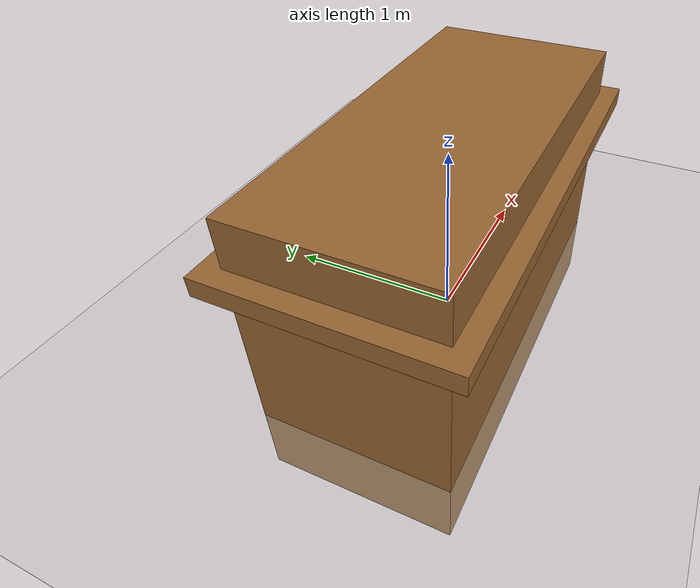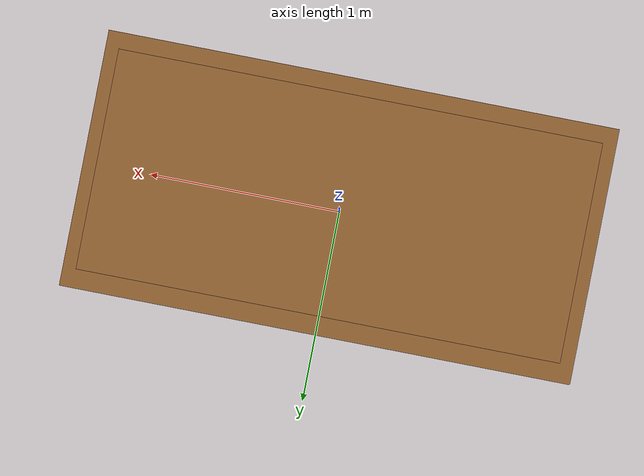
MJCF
<?xml version="1.0" encoding="utf-8"?>
<!-- MuJoCo收银台仿真模型 | 可直接加载运行 -->
<mujoco model="supermarket_checkout_counter">
  <!-- 编译配置：从几何形状自动计算惯性 -->
  <compiler angle="radian" inertiafromgeom="true" autolimits="true"/>

  <!-- 物理参数：步长0.005秒，重力9.81m/s² -->
  <option timestep="0.005" gravity="0 0 -9.81" iterations="50"/>
  <size nconmax="500" njmax="200" nstack="1000000"/>

  <!-- 材质与纹理定义 -->
  <asset>
    <!-- 木质纹理（收银台主体） -->
    <texture name="wood_tex" type="2d" builtin="checker"
             rgb1=".6 .4 .2" rgb2=".5 .3 .1" width="200" height="200"/>
    <!-- 金属纹理（扫码枪、收银机） -->
    <texture name="metal_tex" type="2d" builtin="flat"
             rgb1=".8 .8 .8" rgb2=".7 .7 .7" width="200" height="200"/>
    <!-- 塑料纹理（显示屏） -->
    <texture name="plastic_tex" type="2d" builtin="flat"
             rgb1=".1 .1 .3" rgb2=".1 .1 .4" width="200" height="200"/>

    <!-- 材质绑定 -->
    <material name="wood_mat" texture="wood_tex" texrepeat="5 5" specular=".1" shininess=".1"/>
    <material name="metal_mat" texture="metal_tex" texrepeat="2 2" specular=".9" shininess=".9"/>
    <material name="plastic_mat" texture="plastic_tex" texrepeat="1 1" specular=".5" shininess=".5"/>
  </asset>

  <!-- 物理场景主体 -->
  <worldbody>
    <!-- 地面：无限平面，灰色 -->
    <geom name="floor" type="plane" size="10 10 0.1" pos="0 0 0" rgba=".8 .8 .8 1"/>

    <!-- 收银台主体（高度0.8m，符合真实收银台尺寸） -->
    <body name="checkout_base" pos="0 0 0.8">
      <!-- 收银台台面：长1.2m，宽0.6m，厚0.05m -->
      <geom name="counter_top" type="box" size="1.2 0.6 0.05" pos="0 0 0.1"
            material="wood_mat" rgba=".6 .4 .2 1" friction=".8 .1 .01"/>
      <!-- 收银台柜体：长1.1m，宽0.5m，高0.8m -->
      <geom name="counter_body" type="box" size="1.1 0.5 0.8" pos="0 0 -0.4"
            material="wood_mat" rgba=".6 .4 .2 1"/>

      <!-- 收银机（右侧） -->
      <body name="cash_register" pos="0.5 0.2 0.15">
        <!-- 显示屏 -->
        <geom name="register_display" type="box" size="0.2 0.15 0.02" pos="0 0 0.1"
              material="plastic_mat" rgba=".1 .1 .3 1"/>
        <!-- 键盘 -->
        <geom name="register_keyboard" type="box" size="0.15 0.1 0.01" pos="0 0 0.05"
              material="metal_mat" rgba=".2 .2 .2 1"/>
        <!-- 收银机主机 -->
        <geom name="register_main" type="box" size="0.2 0.18 0.1" pos="0 0 -0.05"
              material="metal_mat" rgba=".3 .3 .3 1"/>
      </body>

      <!-- 扫码枪（左侧，带旋转关节） -->
      <body name="scanner_base" pos="-0.3 0.2 0.12">
        <!-- 旋转关节：绕X轴旋转，范围-1.0~0.5弧度（-57°~28°） -->
        <joint name="scanner_joint" type="hinge" axis="1 0 0" range="-1.0 0.5"
               damping="0.1" armature="0.01"/>
        <!-- 扫码枪支架 -->
        <geom name="scanner_arm" type="cylinder" size="0.01 0.15" pos="0 0 0"
              material="metal_mat" rgba=".2 .2 .2 1"/>
        <!-- 扫码枪头部 -->
        <body name="scanner_head" pos="0 0 -0.15">
          <geom name="scanner_head_geom" type="sphere" size="0.05"
                material="metal_mat" rgba=".1 .3 .1 1"/>
        </body>
      </body>

      <!-- 收银抽屉（带滑动关节） -->
      <body name="drawer_base" pos="0.5 -0.2 -0.1">
        <!-- 滑动关节：沿Y轴滑动，范围0~0.3m（完全关闭到完全打开） -->
        <joint name="drawer_joint" type="slide" axis="0 1 0" range="0 0.3"
               damping="0.2" armature="0.01"/>
        <!-- 抽屉本体 -->
        <geom name="drawer" type="box" size="0.2 0.15 0.1" pos="0 0 0"
              material="metal_mat" rgba=".4 .4 .4 1"/>
      </body>
    </body>

    <!-- 测试商品（可交互） -->
    <body name="test_product" pos="-0.2 0 0.2">
      <geom name="product_geom" type="box" size="0.05 0.03 0.1" rgba="1 0 0 1"
            density="1000" friction=".5 .1 .01"/>
      <!-- 自由关节：允许商品自由移动/掉落 -->
      <freejoint name="product_joint" damping="0.05"/>
    </body>
  </worldbody>

  <!-- 执行器：控制抽屉和扫码枪 -->
  <actuator>
    <!-- 抽屉控制电机 -->
    <motor name="drawer_motor" joint="drawer_joint" ctrlrange="0 10"
           ctrllimited="true" gear="5.0"/>
    <!-- 扫码枪控制电机 -->
    <motor name="scanner_motor" joint="scanner_joint" ctrlrange="-5 5"
           ctrllimited="true" gear="2.0"/>
  </actuator>
</mujoco>
